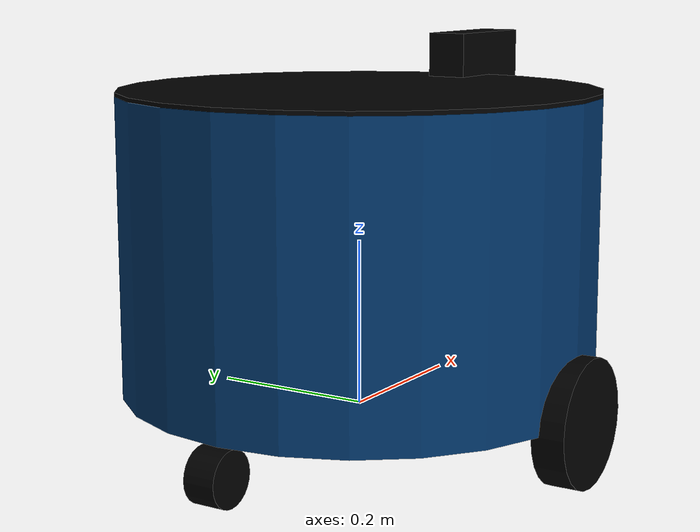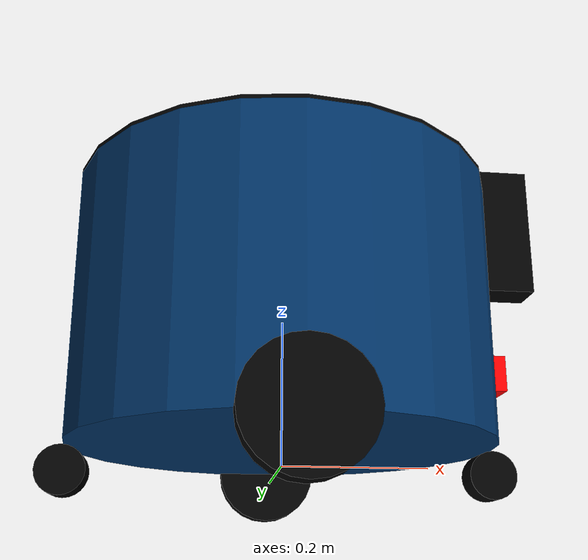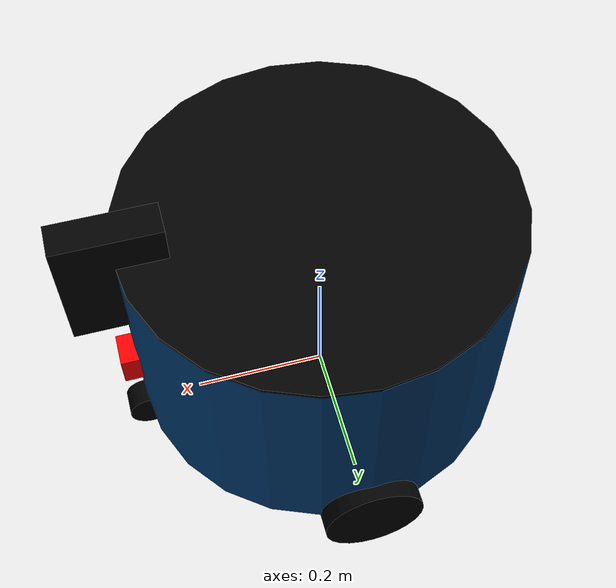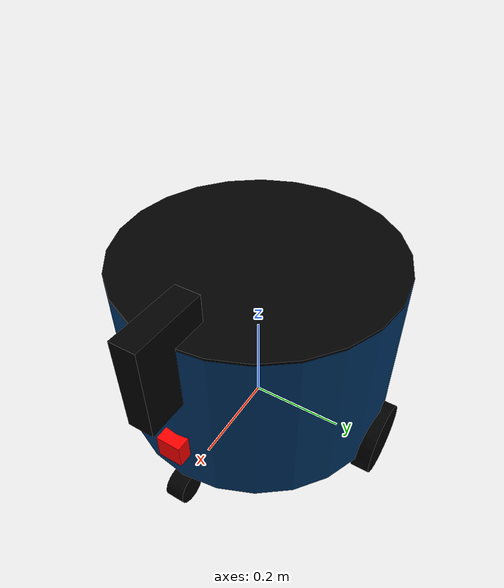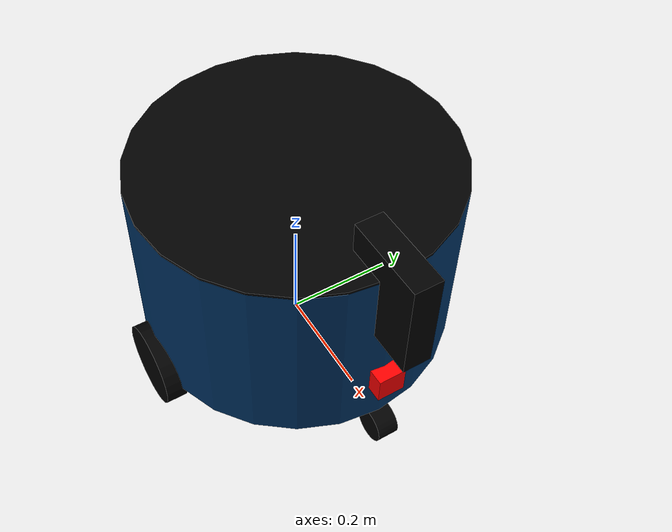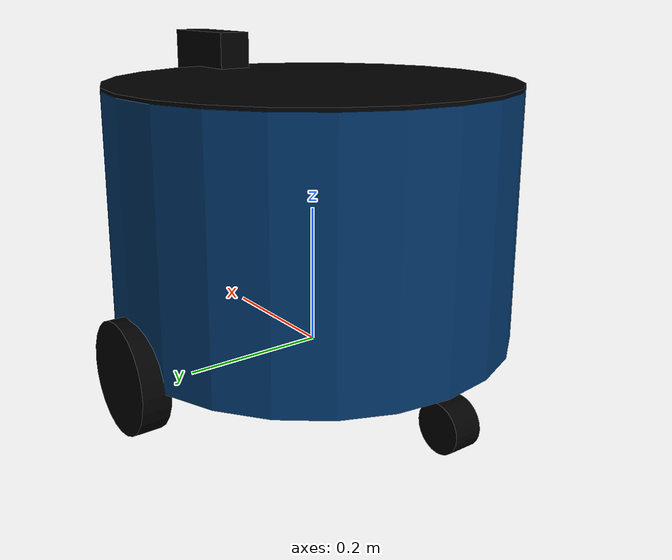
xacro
<?xml version="1.0"?>
<robot xmlns:xacro="http://www.ros.org/wiki/xacro" name="tobot">

  <!-- Constant for the xacro model -->

  <xacro:property name="GROUND_CLEARANCE" value="0.2" />
  <xacro:property name="width" value="0.285" />
  <xacro:property name="bodylen" value="0.355" />
  <xacro:property name="wheel_w" value="0.039" />
  <xacro:property name="wheel_rad" value="0.075" />
  <xacro:property name="plat_rad" value="0.285" />
  <xacro:property name="plat_len" value="0.005" />
  <xacro:property name="HIGH_PLATFORM" value="0.15" />
  <xacro:property name="posz_laser" value="0.285" />
  <xacro:property name="posz_camera" value="0.5" />
  <xacro:property name="fwheel_rad" value="0.0325" />
  <xacro:property name="PI" value="3.1415" />

  <material name="black">
    <color rgba="0 0 0 1"/>
  </material>

  <material name="red">
    <color rgba="1 0 0 1"/>
  </material>

  <!-- Actual frame and materials -->

  <link name="base_link">
    <visual>
      <geometry>
         <cylinder length="${bodylen}" radius="${width}"/>
      </geometry>
      <origin rpy="0 0 0" xyz="0 0 ${GROUND_CLEARANCE}"/>
      <material name="blue">
        <color rgba="0 0.2 0.4 1"/>
      </material>
    </visual>
    <collision>
      <geometry>
         <cylinder length="${bodylen}" radius="${width}"/>
      </geometry>
      <origin rpy="0 0 0" xyz="0 0 ${bodylen/2}"/>
    </collision>
  </link>

  <link name="lwheel">
    <visual>
      <geometry>
        <cylinder length="${wheel_w}" radius="${wheel_rad}"/>
      </geometry>
      <origin rpy="-1.57075 0 0" xyz="0 0 0"/>
      <material name="black"/>
    </visual>
    <collsion>
      <geometry>
        <cylinder length="${wheel_w}" radius="${wheel_rad}"/>
      </geometry>
      <origin rpy="-1.57075 0 0" xyz="0 0 0"/>
    </collsion>
  </link>

  <joint name="base_to_lwheel" type="continuous">
    <parent link="base_link"/>
    <child link="lwheel"/>
    <axis xyz="0 1 0"/>
    <origin xyz="0 ${width} ${GROUND_CLEARANCE-(bodylen/2)}" rpy="0 0 0"/>
  </joint>

  <link name="rwheel">
    <visual>
      <geometry>
        <cylinder length="${wheel_w}" radius="${wheel_rad}"/>
      </geometry>
      <origin rpy="-1.57075 0 0" xyz="0 0 0"/>
      <material name="black"/>
    </visual>
    <collsion>
      <geometry>
        <cylinder length="${wheel_w}" radius="${wheel_rad}"/>
      </geometry>
      <origin rpy="-1.57075 0 0" xyz="0 0 0"/>
    </collsion>
  </link>

  <joint name="base_to_rwheel" type="continuous">
    <parent link="base_link"/>
    <child link="rwheel"/>
    <axis xyz="0 1 0"/>
    <origin xyz="0 ${-width} ${GROUND_CLEARANCE-(bodylen/2)}" rpy="0 0 0"/>
  </joint>

  <!--LASER-->
  <link name="laser">
    <visual>
      <geometry>
        <box size="0.05 .05 .05"/>
      </geometry>
      <origin rpy="0 0 0" xyz="0 0 0"/>
      <material name="red"/>
    </visual>
  </link>

  <joint name="base_laser" type="fixed">
    <parent link="base_link"/>
    <child link="laser"/>
    <origin xyz="${width} 0 ${GROUND_CLEARANCE-bodylen+posz_laser} " rpy="0 0 0"/>
  </joint>

  <!--FRONT WHEEL-->
  <link name="fwheel">
    <visual>
      <geometry>
        <cylinder length="${wheel_w}" radius="${fwheel_rad}"/>
      </geometry>
      <origin rpy="-1.57075 0 0" xyz="0 0 0"/>
      <material name="black"/>
    </visual>
    <collsion>
      <geometry>
        <cylinder length="${wheel_w}" radius="${fwheel_rad}"/>
      </geometry>
      <origin rpy="-1.57075 0 0" xyz="0 0 0"/>
    </collsion>
  </link>

  <joint name="base_to_fwheel" type="continuous">
    <parent link="base_link"/>
    <child link="fwheel"/>
    <axis xyz="0 1 0"/>
    <origin xyz="${width} 0 ${GROUND_CLEARANCE-(bodylen/2)-(fwheel_rad)}" rpy="0 0 0"/>
  </joint>

  <!--BACK WHEEL-->
  <link name="bwheel">
    <visual>
      <geometry>
        <cylinder length="${wheel_w}" radius="${fwheel_rad}"/>
      </geometry>
      <origin rpy="-1.57075 0 0" xyz="0 0 0"/>
      <material name="black"/>
    </visual>
    <collsion>
      <geometry>
        <cylinder length="${wheel_w}" radius="${fwheel_rad}"/>
      </geometry>
      <origin rpy="-1.57075 0 0" xyz="0 0 0"/>
    </collsion>
  </link>

  <joint name="base_to_bwheel" type="continuous">
    <parent link="base_link"/>
    <child link="bwheel"/>
    <axis xyz="0 1 0"/>
    <origin xyz="${-width} 0 ${GROUND_CLEARANCE-(bodylen/2)-(fwheel_rad)}" rpy="0 0 0"/>
  </joint>

  <!-- PLatform qui se leve-->
  <link name="platform">
    <visual>
      <geometry>
         <cylinder length="${plat_len}" radius="${plat_rad}"/>
      </geometry>
      <origin rpy="0 0 0" xyz="0 0 ${plat_len/2}"/>
      <material name="black"/>
    </visual>
  </link>

  <joint name="base_platform" type="prismatic">
    <parent link="base_link"/>
    <child link="platform"/>
    <axis xyz="0 0 1"/>
    <limit effort="1000.0" lower="0" upper="${HIGH_PLATFORM}" velocity="0.5"/>
    <origin rpy="0 0 0" xyz="0 0 ${(bodylen/2)+GROUND_CLEARANCE}"/>
  </joint>

  <!--CAMERA-->
  <link name="camera_link">
    <visual>
      <geometry>
        <box size="0.15 .05 .1865"/>
      </geometry>
      <origin rpy="0 0 0" xyz="0 0 0"/>
      <material name="black"/>
    </visual>
  </link>

  <joint name="camera" type="fixed">
    <parent link="base_link"/>
    <child link="camera_link"/>
    <origin xyz="${width} 0 ${GROUND_CLEARANCE-bodylen+posz_camera} " rpy="0 0 0"/>
  </joint>

</robot>
